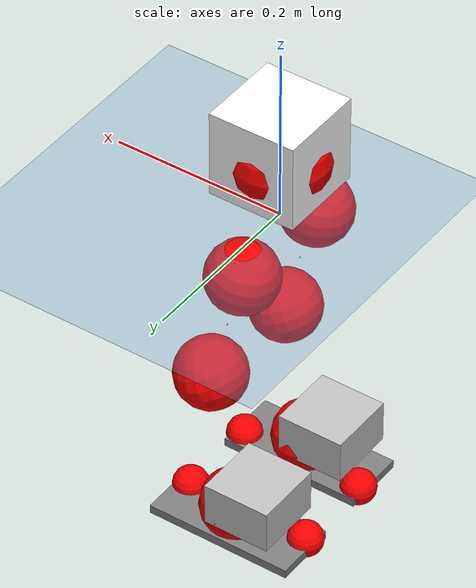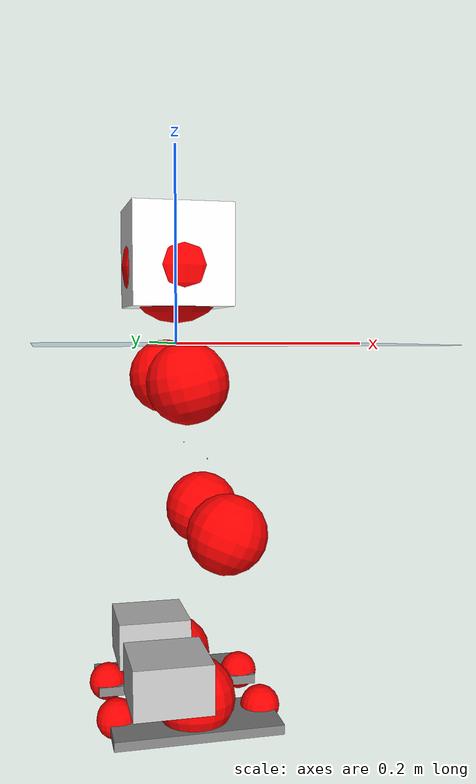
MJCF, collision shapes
<mujoco model="pi_12dof_release_v1">
  <compiler angle="radian" assetdir="assets" balanceinertia="true" inertiafromgeom="false"/>

  <option timestep="0.005" density="1.2" viscosity="2e-05"/>

  <size nkey="1"/>

  <visual>
    <quality shadowsize="8192"/>
    <map shadowclip="0.5"/>
  </visual>

  <default>
    <default class="/">
      <joint armature="0.01" damping="0.01" frictionloss="0.01"/>
      <geom contype="0" conaffinity="0" group="1" solref="-1000 -80"/>
      <site size="0.01 0.005 0.005" group="5"/>
      <general forcelimited="true" biastype="affine" gainprm="20" biasprm="0 -20 -0.5"/>
      <default class="foot">
        <geom size="0.0845 0.036 0.005" type="box" condim="6" group="4" priority="1" friction="0.9 0.2 0.2" solimp="0.015 1 0.005"/>
      </default>
      <default class="reward_collision_sphere">
        <geom group="5" rgba="1 0 0 1"/>
      </default>
    </default>
  </default>

  <asset>
    <texture type="skybox" colorspace="auto" name="//unnamed_texture_0" builtin="gradient" rgb1="0.95 0.95 0.95" rgb2="0.95 0.95 0.95" width="100" height="600"/>
    <texture type="2d" colorspace="auto" name="texplane" builtin="checker" rgb1="0.345 0.575 0.748" rgb2="0.345 0.575 0.748" markrgb="1 1 1" width="512" height="512"/>
    <material name="MatPlane" class="/" texture="texplane" texuniform="true" texrepeat="2 2" specular="0.9"/>
    <mesh name="baselink_1" class="/" file="baselink_1.STL"/>
    <mesh name="r_hip_pitch_link" class="/" file="r_hip_pitch_link.STL"/>
    <mesh name="r_hip_roll_link" class="/" file="r_hip_roll_link.STL"/>
    <mesh name="r_thigh_link" class="/" file="r_thigh_link.STL"/>
    <mesh name="r_calf_link" class="/" file="r_calf_link.STL"/>
    <mesh name="r_ankle_pitch_link" class="/" file="r_ankle_pitch_link.STL"/>
    <mesh name="r_ankle_roll_link" class="/" file="r_ankle_roll_link.STL"/>
    <mesh name="l_hip_pitch_link" class="/" file="l_hip_pitch_link.STL"/>
    <mesh name="l_hip_roll_link" class="/" file="l_hip_roll_link.STL"/>
    <mesh name="l_thigh_link" class="/" file="l_thigh_link.STL"/>
    <mesh name="l_calf_link" class="/" file="l_calf_link.STL"/>
    <mesh name="l_ankle_pitch_link" class="/" file="l_ankle_pitch_link.STL"/>
    <mesh name="l_ankle_roll_link" class="/" file="l_ankle_roll_link.STL"/>
  </asset>

  <worldbody>
    <geom name="floor" class="/" size="100 100 0.125" type="plane" group="0" material="MatPlane"/>
    <light name="toplight_shadow" class="/" pos="0 0 5" dir="0.0990148 0.0990148 -0.990148" type="directional" ambient="0.04 0.04 0.04" diffuse="0.55 0.55 0.55" specular="0.12 0.12 0.12"/>
    <light name="toplight_fill" class="/" pos="0 0 5" dir="0.0990148 0.0990148 -0.990148" type="directional" castshadow="false" ambient="0.04 0.04 0.04" diffuse="0.3 0.3 0.3" specular="0.08 0.08 0.08"/>
    <body name="trunk" pos="0.000318776 0.000111953 -0.000982939" quat="1 -0.000103837 0.000215964 -0.000172794">
      <inertial pos="0.00334434 -0.000961626 0.044273" quat="0.696748 0.010568 0.00933155 0.717177" mass="2.24366" diaginertia="0.0151095 0.00345574 0.00688985"/>
      <joint name="//unnamed_joint_0" type="free"/>
      <geom name="//unnamed_geom_1" class="/" type="mesh" density="0" rgba="1 1 1 1" mesh="baselink_1"/>
      <geom name="//unnamed_geom_2" class="/" size="0.0502647 0.0502647 0.0502647" pos="0 0 0.0882889" type="box" rgba="1 1 1 1"/>
      <geom name="//unnamed_geom_3" class="reward_collision_sphere" size="0.0552911" pos="0 0 0.0772528"/>
      <site name="imu" class="/" pos="0.00250935 -0.00460084 0.00174036" size="0.0100529"/>
      <camera name="track" class="/" pos="0 -1.64814 0" quat="0.707107 0.707107 0 0" mode="trackcom"/>
      <camera name="ego_camera" class="/" pos="0.081615 0 0.19865" quat="-0.5 -0.5 0.5 0.5"/>
      <body name="r_hip_pitch_link" pos="-0.000214277 -0.0191345 -0.0361727" quat="0.992197 -7.59616e-06 -0.124678 -1.45581e-06">
        <inertial pos="0.00107807 -0.0457311 -0.000415463" quat="-0.0173701 0.703151 -0.0275385 0.710295" mass="0.379712" diaginertia="0.000166414 3.76738e-05 0.000137474"/>
        <joint name="r_hip_pitch_joint" class="/" pos="0 0 0" axis="0.00046177 -0.999999 0.00097317" range="-1.74037 1.24664" armature="0.0101539" damping="0.0129766" frictionloss="0.0103006"/>
        <geom name="//unnamed_geom_4" class="/" type="mesh" density="0" rgba="0.75294 0.75294 0.75294 1" mesh="r_hip_pitch_link"/>
        <geom name="//unnamed_geom_5" class="/" size="0.000502647 0.000502647 0.000502647" type="box" rgba="0.75294 0.75294 0.75294 1"/>
        <body name="r_hip_roll_link" pos="-0.000256915 -0.0466504 0.000168415" quat="1 2.11004e-05 -7.17703e-05 4.20311e-06">
          <inertial pos="-0.00115059 -4.24606e-05 -0.0679801" quat="0.705671 -0.0796277 -0.0822245 0.699233" mass="0.395828" diaginertia="0.000512061 0.00010557 0.000210446"/>
          <joint name="r_hip_roll_joint" class="/" pos="0 0 0" axis="-0.999996 3.47041e-05 -0.00298176" range="-0.12157 0.501402" armature="0.00942771" damping="0.0095202" frictionloss="0.00960207"/>
          <geom name="//unnamed_geom_6" class="/" type="mesh" density="0" rgba="0.75294 0.75294 0.75294 1" mesh="r_hip_roll_link"/>
          <geom name="//unnamed_geom_7" class="/" size="0.000502647 0.000502647 0.000502647" type="box" rgba="0.75294 0.75294 0.75294 1"/>
          <geom name="//unnamed_geom_8" class="reward_collision_sphere" size="0.0402117"/>
          <body name="r_thigh_link" pos="0.000458011 0.000961556 -0.0759678" quat="1 7.25928e-05 7.12499e-05 -6.44574e-05">
            <inertial pos="-0.000847753 7.94371e-05 -0.0523336" quat="0.736687 0.676233 0.00119657 0.000553932" mass="0.115199" diaginertia="0.000190161 3.61245e-05 9.4965e-05"/>
            <joint name="r_thigh_joint" class="/" pos="0 0 0" axis="-6.44483e-06 -0.000382607 -1" range="-0.283827 0.591732" armature="0.00951186" damping="0.000921535" frictionloss="0.00979968"/>
            <geom name="//unnamed_geom_9" class="/" type="mesh" density="0" rgba="0.75294 0.75294 0.75294 1" mesh="r_thigh_link"/>
            <geom name="//unnamed_geom_10" class="/" size="0.000502647 0.000502647 0.000502647" type="box" rgba="0.75294 0.75294 0.75294 1"/>
            <body name="r_calf_link" pos="-4.19539e-05 -0.00227955 -0.0779174" quat="0.947581 0.00029451 0.319517 -0.000483696">
              <inertial pos="0.000503138 -0.00077251 -0.0769757" quat="0.999996 -0.00216253 0.00202239 -0.000153765" mass="0.838672" diaginertia="0.00541366 0.00133207 0.000287547"/>
              <joint name="r_calf_joint" class="/" pos="0 0 0" axis="-0.000733836 -0.999999 -0.00131228" range="-1.65342 0.629461" armature="0.0100814" damping="0.00741142" frictionloss="0.0100365"/>
              <geom name="//unnamed_geom_11" class="/" type="mesh" density="0" rgba="0.75294 0.75294 0.75294 1" mesh="r_calf_link"/>
              <geom name="//unnamed_geom_12" class="/" size="0.000502647 0.000502647 0.000502647" type="box" rgba="0.75294 0.75294 0.75294 1"/>
              <geom name="//unnamed_geom_13" class="reward_collision_sphere" size="0.0402117"/>
              <body name="r_ankle_pitch_link" pos="-0.000280056 0.000719675 -0.152822" quat="0.980091 0.000305396 -0.198547 5.67942e-06">
                <inertial pos="0.00612494 0.00312588 5.15023e-05" quat="0.00206232 0.707019 -0.00260728 0.707187" mass="0.177603" diaginertia="0.000467218 8.43963e-05 0.000194063"/>
                <joint name="r_ankle_pitch_joint" class="/" pos="0 0 0" axis="0.00448938 -0.999983 -0.00383694" range="-1.27933 0.498789" armature="0.0103111" damping="0.0156322" frictionloss="0.0102949"/>
                <geom name="//unnamed_geom_14" class="/" type="mesh" density="0" rgba="0.75294 0.75294 0.75294 1" mesh="r_ankle_pitch_link"/>
                <geom name="//unnamed_geom_15" class="/" size="0.0392064 0.0402117 0.0251323" type="box" rgba="0.75294 0.75294 0.75294 1"/>
                <body name="r_ankle_roll_link" pos="0.0820566 0.00210465 -5.60624e-07" quat="1 -0.000141619 0.000126995 -3.28281e-05">
                  <inertial pos="-0.0258543 -0.000297149 -0.0164755" quat="0.560939 0.427939 0.430409 0.562995" mass="0.52047" diaginertia="0.00172176 0.000390429 0.000465743"/>
                  <joint name="r_ankle_roll_joint" class="/" pos="0 0 0" axis="-1 -0.000317705 -0.000742225" range="-0.17672 0.13304" armature="0.00997907" damping="0.0129476" frictionloss="0.00973052"/>
                  <geom name="//unnamed_geom_16" class="/" type="mesh" density="0" rgba="0.75294 0.75294 0.75294 1" mesh="r_ankle_roll_link"/>
                  <geom name="//unnamed_geom_17" class="/" type="mesh" rgba="0.75294 0.75294 0.75294 1" mesh="r_ankle_roll_link"/>
                  <geom name="right_foot" class="foot" size="0.0830846 0.0374766 0.00473343" pos="-0.0554982 0 -0.0485589"/>
                  <geom name="//unnamed_geom_19" class="reward_collision_sphere" size="0.0402117" pos="-0.05441 0 -0.0220722"/>
                  <geom name="//unnamed_geom_20" class="reward_collision_sphere" size="0.0201059" pos="0.016323 0.0164814 -0.0441445"/>
                  <geom name="//unnamed_geom_21" class="reward_collision_sphere" size="0.0201059" pos="-0.130584 0.0164814 -0.0441445"/>
                  <site name="right_foot" class="foot" pos="-0.0554982 0 -0.0485589" size="0.0100529"/>
                </body>
              </body>
            </body>
          </body>
        </body>
      </body>
      <body name="l_hip_pitch_link" pos="-0.000130595 0.0197294 -0.0362118" quat="0.992198 -3.56386e-06 -0.124672 -2.57033e-06">
        <inertial pos="0.00169085 0.0437478 -0.0015348" quat="-0.0412759 0.706044 0.0289866 0.70637" mass="0.399623" diaginertia="0.000200257 4.01004e-05 0.000167622"/>
        <joint name="l_hip_pitch_joint" class="/" pos="0 0 0" axis="0.00156322 0.999999 0.000249349" range="-1.26496 1.77015" armature="0.0100742" damping="0.00420928" frictionloss="0.00958875"/>
        <geom name="//unnamed_geom_22" class="/" type="mesh" density="0" rgba="0.75294 0.75294 0.75294 1" mesh="l_hip_pitch_link"/>
        <geom name="//unnamed_geom_23" class="/" size="0.000502647 0.000502647 0.000502647" type="box" rgba="0.75294 0.75294 0.75294 1"/>
        <body name="l_hip_roll_link" pos="-0.000491956 0.0458953 0.00126976" quat="1 0.000210978 -0.000236346 8.25717e-05">
          <inertial pos="2.74465e-05 0.000399973 -0.0688494" quat="0.699319 -0.0752547 -0.0779889 0.706547" mass="0.403263" diaginertia="0.000521342 0.000107926 0.000212176"/>
          <joint name="l_hip_roll_joint" class="/" pos="0 0 0" axis="-1 -9.0658e-05 -0.000348903" stiffness="0.000352147" range="-0.500962 0.135572" armature="0.0102966" damping="0.000963178" frictionloss="0.0100501"/>
          <geom name="//unnamed_geom_24" class="/" type="mesh" density="0" rgba="0.75294 0.75294 0.75294 1" mesh="l_hip_roll_link"/>
          <geom name="//unnamed_geom_25" class="/" size="0.000502647 0.000502647 0.000502647" type="box" rgba="0.75294 0.75294 0.75294 1"/>
          <geom name="//unnamed_geom_26" class="reward_collision_sphere" size="0.0402117"/>
          <body name="l_thigh_link" pos="0.000513836 -0.000555217 -0.0761808" quat="1 -1.44211e-05 0.000106692 -0.000185774">
            <inertial pos="-0.000412743 -0.00230045 -0.0538689" quat="0.676058 0.736846 -0.00168035 -0.000724374" mass="0.114963" diaginertia="0.000192071 3.6673e-05 9.47203e-05"/>
            <joint name="l_thigh_joint" class="/" pos="0 0 0" axis="0.000163529 3.41212e-05 -1" range="-0.594373 0.286496" armature="0.00984413" damping="0.010022" frictionloss="0.0106188"/>
            <geom name="//unnamed_geom_27" class="/" type="mesh" density="0" rgba="0.75294 0.75294 0.75294 1" mesh="l_thigh_link"/>
            <geom name="//unnamed_geom_28" class="/" size="0.000502647 0.000502647 0.000502647" type="box" rgba="0.75294 0.75294 0.75294 1"/>
            <body name="l_calf_link" pos="0.00104169 0.000573965 -0.0768831" quat="0.947639 4.98836e-05 0.319343 -1.81207e-05">
              <inertial pos="0.000893947 0.00351769 -0.0766767" quat="0.999976 0.00370896 0.00211861 0.00544877" mass="0.82212" diaginertia="0.00548751 0.00134524 0.000285929"/>
              <joint name="l_calf_joint" class="/" pos="0 0 0" axis="0.00459426 0.999985 0.00292909" range="-0.652961 1.66347" armature="0.0101871" damping="0.0117158" frictionloss="0.00963747"/>
              <geom name="//unnamed_geom_29" class="/" type="mesh" density="0" rgba="0.75294 0.75294 0.75294 1" mesh="l_calf_link"/>
              <geom name="//unnamed_geom_30" class="/" size="0.000502647 0.000502647 0.000502647" type="box" rgba="0.75294 0.75294 0.75294 1"/>
              <geom name="//unnamed_geom_31" class="reward_collision_sphere" size="0.0402117"/>
              <body name="l_ankle_pitch_link" pos="0.000856965 0.000611339 -0.153791" quat="0.980115 -0.000147832 -0.19843 8.04163e-05">
                <inertial pos="0.004428 0.000206946 -0.000779654" quat="-0.000838591 0.708894 0.00490944 0.705297" mass="0.176279" diaginertia="0.000470585 8.417e-05 0.000197258"/>
                <joint name="l_ankle_pitch_joint" class="/" pos="0 0 0" axis="-0.00155551 0.999999 0.000230504" range="-0.489733 1.29913" armature="0.0104452" damping="0" frictionloss="0.0102039"/>
                <geom name="//unnamed_geom_32" class="/" type="mesh" density="0" rgba="0.75294 0.75294 0.75294 1" mesh="l_ankle_pitch_link"/>
                <geom name="//unnamed_geom_33" class="/" size="0.0392064 0.0402117 0.0251323" type="box" rgba="0.75294 0.75294 0.75294 1"/>
                <body name="l_ankle_roll_link" pos="0.081099 0.000154989 -0.0004929" quat="1 0.000114524 0.000626437 0.000111389">
                  <inertial pos="-0.0264754 -0.000462985 -0.0159364" quat="0.560049 0.430291 0.436079 0.5577" mass="0.51783" diaginertia="0.00169706 0.000383066 0.000455024"/>
                  <joint name="l_ankle_roll_joint" class="/" pos="0 0 0" axis="-1 -5.89113e-05 0.000423043" range="-0.145657 0.126008" armature="0.00999348" damping="0.0100087" frictionloss="0.0104949"/>
                  <geom name="//unnamed_geom_34" class="/" type="mesh" density="0" rgba="0.75294 0.75294 0.75294 1" mesh="l_ankle_roll_link"/>
                  <geom name="//unnamed_geom_35" class="/" type="mesh" rgba="0.75294 0.75294 0.75294 1" mesh="l_ankle_roll_link"/>
                  <geom name="left_foot" class="foot" size="0.0865153 0.0367938 0.00504715" pos="-0.0554982 0 -0.0485589"/>
                  <geom name="//unnamed_geom_37" class="reward_collision_sphere" size="0.0402117" pos="-0.05441 0 -0.0220722"/>
                  <geom name="//unnamed_geom_38" class="reward_collision_sphere" size="0.0201059" pos="0.016323 -0.0164814 -0.0441445"/>
                  <geom name="//unnamed_geom_39" class="reward_collision_sphere" size="0.0201059" pos="-0.130584 -0.0164814 -0.0441445"/>
                  <site name="left_foot" class="foot" pos="-0.0554982 0 -0.0485589" size="0.0100529"/>
                </body>
              </body>
            </body>
          </body>
        </body>
      </body>
    </body>
  </worldbody>

  <contact>
    <pair class="/" geom1="floor" geom2="right_foot" name="//unnamed_contact_1"/>
    <pair class="/" geom1="floor" geom2="left_foot" name="//unnamed_contact_0"/>
  </contact>

  <actuator>
    <general name="r_hip_pitch_joint" class="/" joint="r_hip_pitch_joint" forcerange="-21.2504 21.2504" gainprm="19.5027" biasprm="0 -19.5027 -0.502053"/>
    <general name="r_hip_roll_joint" class="/" joint="r_hip_roll_joint" forcerange="-20.1761 20.1761" gainprm="19.5027" biasprm="0 -19.5027 -0.502053"/>
    <general name="r_thigh_joint" class="/" joint="r_thigh_joint" forcerange="-21.0469 21.0469" gainprm="19.5027" biasprm="0 -19.5027 -0.502053"/>
    <general name="r_calf_joint" class="/" joint="r_calf_joint" forcerange="-22.1535 22.1535" gainprm="19.5027" biasprm="0 -19.5027 -0.502053"/>
    <general name="r_ankle_pitch_joint" class="/" joint="r_ankle_pitch_joint" forcerange="-21.6985 21.6985" gainprm="19.5027" biasprm="0 -19.5027 -0.502053"/>
    <general name="r_ankle_roll_joint" class="/" joint="r_ankle_roll_joint" forcerange="-20.1622 20.1622" gainprm="19.5027" biasprm="0 -19.5027 -0.502053"/>
    <general name="l_hip_pitch_joint" class="/" joint="l_hip_pitch_joint" forcerange="-20.9859 20.9859" gainprm="19.5027" biasprm="0 -19.5027 -0.502053"/>
    <general name="l_hip_roll_joint" class="/" joint="l_hip_roll_joint" forcerange="-21.5257 21.5257" gainprm="19.5027" biasprm="0 -19.5027 -0.502053"/>
    <general name="l_thigh_joint" class="/" joint="l_thigh_joint" forcerange="-20.3728 20.3728" gainprm="19.5027" biasprm="0 -19.5027 -0.502053"/>
    <general name="l_calf_joint" class="/" joint="l_calf_joint" forcerange="-20.7229 20.7229" gainprm="19.5027" biasprm="0 -19.5027 -0.502053"/>
    <general name="l_ankle_pitch_joint" class="/" joint="l_ankle_pitch_joint" forcerange="-20.3678 20.3678" gainprm="19.5027" biasprm="0 -19.5027 -0.502053"/>
    <general name="l_ankle_roll_joint" class="/" joint="l_ankle_roll_joint" forcerange="-20.9284 20.9284" gainprm="19.5027" biasprm="0 -19.5027 -0.502053"/>
  </actuator>

  <sensor>
    <gyro site="imu" name="imu_angular_velocity"/>
    <velocimeter site="imu" name="imu_linear_velocity"/>
    <framelinvel objtype="site" objname="left_foot" name="left_foot_global_linear_velocity"/>
    <framelinvel objtype="site" objname="right_foot" name="right_foot_global_linear_velocity"/>
  </sensor>

  <keyframe>
    <key name="home" qpos="0 0 0.291 1 0 0 0 0.4 0 0 -0.8 0.4 0 -0.4 0 0 0.8 -0.4 0"/>
  </keyframe>
</mujoco>
